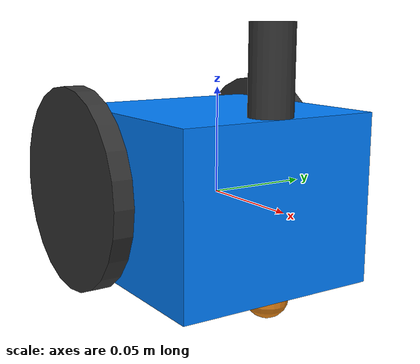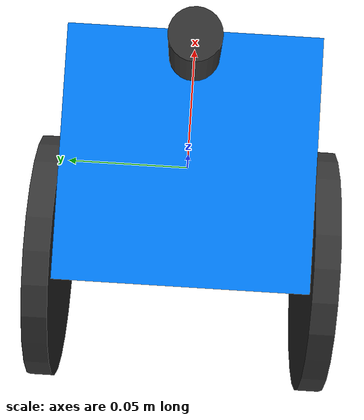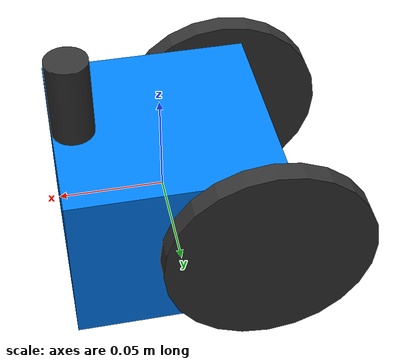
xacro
<?xml version="1.0"?>
<robot name="dd_bot" xmlns:xacro="http://www.ros.org/wiki/xacro">
   <xacro:include filename="$(find dd_bot)/urdf/dd_bot.gazebo"/>
  <!-- Base Link -->
  <link name="base_link">
    <visual>
      <origin xyz="0 0 0" rpy="0 0 0" />
      <geometry>
          <box size="0.1 0.1 0.08"/>
      </geometry>
      <material name="blue">
        <color rgba="0 0.5 1 1"/>
      </material>
    </visual>
    <!-- Base collision, mass and inertia -->
    <collision>
      <origin xyz="0 0 0" rpy="0 0 0" />
      <geometry>
          <box size="0.1 0.1 0.08"/>
      </geometry>
    </collision>
    <inertial>
      <mass value="2"/>
      <inertia ixx="0.13" ixy="0.0" ixz="0.0" iyy="0.21" iyz="0.0" izz="0.13"/>
    </inertial>

    <!-- Caster -->
    <visual name="caster">
      <origin xyz="0.04 0 -0.04" rpy="0 0 0" />
      <geometry>
        <sphere radius="0.01" />
      </geometry>
    </visual>
    <!-- Caster collision, mass and inertia -->
    <collision>
      <origin xyz="0.04 0 -0.04" rpy="0 0 0" />
      <geometry>
        <sphere radius="0.01" />
      </geometry>
    </collision>
    <inertial>
      <mass value="1"/>
      <inertia ixx="0.0001" ixy="0.0" ixz="0.0" iyy="0.0001" iyz="0.0" izz="0.0001"/>
    </inertial>

  </link>

  <!-- Right Wheel -->
  <link name="right_wheel">
    <visual>
      <origin xyz="0 0 0" rpy="1.570795 0 0" />
      <geometry>
          <cylinder length="0.01" radius="0.05" />
      </geometry>
      <material name="darkgray">
        <color rgba=".2 .2 .2 1"/>
      </material>
    </visual>
    <!-- Right Wheel collision, mass and inertia -->
    <collision>
      <origin xyz="0 0 0" rpy="1.570795 0 0" />
      <geometry>
          <cylinder length="0.01" radius="0.05" />
      </geometry>
    </collision>
    <inertial>
      <mass value="0.05"/>
      <inertia ixx="0.01" ixy="0.0" ixz="0.0" iyy="0.005" iyz="0.0" izz="0.005"/>
    </inertial>

  </link>

  <!-- Right Wheel joint -->
  <joint name="right_wheel_joint" type="continuous">
    <parent link="base_link"/>
    <child link="right_wheel"/>
    <origin xyz="-0.04 -0.055 0" rpy="0 0 0" />
    <axis xyz="0 1 0" />
  </joint>

  <!-- Left Wheel -->
  <link name="left_wheel">
    <visual>
      <origin xyz="0 0 0" rpy="1.570795 0 0" />
      <geometry>
          <cylinder length="0.01" radius="0.05" />
      </geometry>
      <material name="darkgray">
        <color rgba=".2 .2 .2 1"/>
      </material>
    </visual>
    <!-- Left Wheel collision, mass and inertia -->
    <collision>
      <origin xyz="0 0 0" rpy="1.570795 0 0" />
      <geometry>
          <cylinder length="0.01" radius="0.05" />
      </geometry>
    </collision>
    <inertial>
      <mass value="0.05"/>
      <inertia ixx="0.01" ixy="0.0" ixz="0.0" iyy="0.005" iyz="0.0" izz="0.005"/>
    </inertial>
  </link>

  <!-- Left Wheel joint -->
  <joint name="left_wheel_joint" type="continuous">
    <parent link="base_link"/>
    <child link="left_wheel"/>
    <origin xyz="-0.04 0.055 0" rpy="0 0 0" />
    <axis xyz="0 1 0" />
  </joint>

  <!-- Laser -->
  <link name = "laser">
    <visual>
      <origin xyz="0 0 0.0" rpy="0 0 0" />
      <geometry>
          <cylinder length="0.04" radius="0.01" />
      </geometry>
      <material name="darkgray">
        <color rgba=".2 .2 .2 1"/>
      </material>
    </visual>
  </link>
  <joint name="laser_joint" type="fixed">
    <parent link = "base_link"/>
    <child link = "laser"/>
    <origin xyz="0.04 0 0.06" rpy="0 0 0"/>
  </joint>

  <transmission name="left_wheel_tran">
    <type>transmission_interface/SimpleTransmission</type>
    <joint name="left_wheel_joint">
      <hardwareInterface>hardware_interface/EffortJointInterface</hardwareInterface>
    </joint>
    <actuator name="left_wheel_motor">
      <hardwareInterface>hardware_interface/EffortJointInterface</hardwareInterface>
      <mechanicalReduction>1</mechanicalReduction>
    </actuator>
  </transmission>

  <transmission name="right_wheel_tran">
    <type>transmission_interface/SimpleTransmission</type>
    <joint name="right_wheel_joint">
      <hardwareInterface>hardware_interface/EffortJointInterface</hardwareInterface>
    </joint>
    <actuator name="right_wheel_motor">
      <hardwareInterface>hardware_interface/EffortJointInterface</hardwareInterface>
      <mechanicalReduction>1</mechanicalReduction>
    </actuator>
  </transmission>
</robot>
